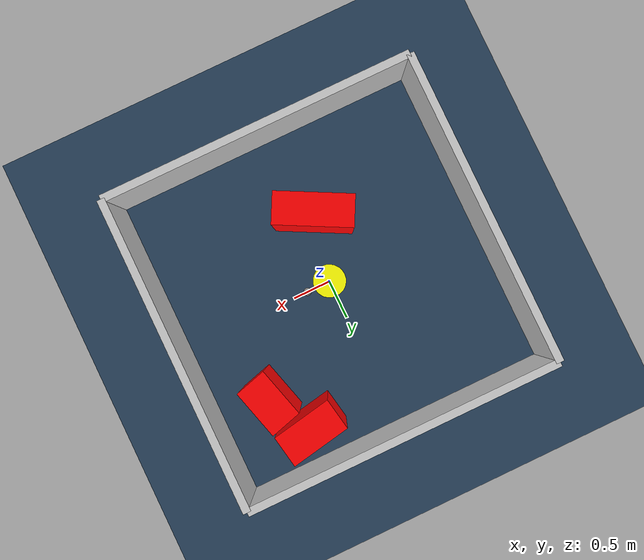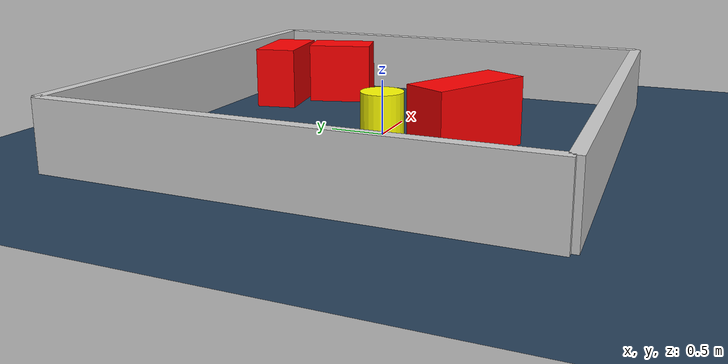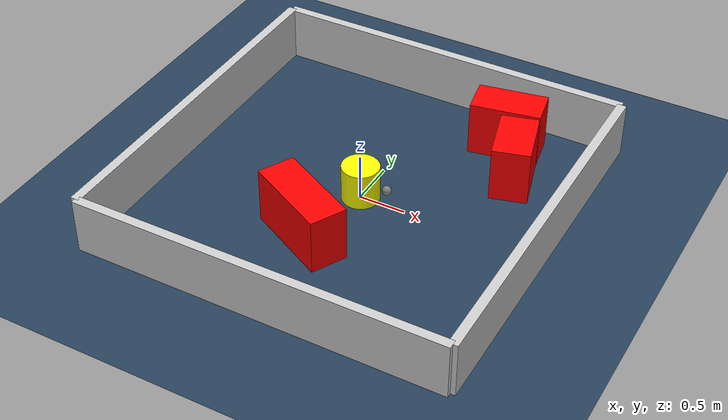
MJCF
<?xml version="1.0" ?>
<mujoco model="generated_environment">
  <option timestep="0.01" integrator="RK4" cone="elliptic"/>
  <default>
    <geom density="1"/>
  </default>
  <asset>
    <texture builtin="gradient" height="3072" rgb1="0.3 0.5 0.7" rgb2="0 0 0" type="skybox" width="512"/>
    <texture builtin="checker" height="300" mark="edge" markrgb="0.8 0.8 0.8" name="groundplane" rgb1="0.2 0.3 0.4" rgb2="0.1 0.2 0.3" type="2d" width="300"/>
    <material name="groundplane" reflectance="0.2" texrepeat="5 5" texture="groundplane" texuniform="true"/>
    <material name="robot" rgba="0.0 1.0 0.0 1"/>
  </asset>
  <worldbody>
    <light dir="0 0 -1" directional="true" pos="0 0 1.5"/>
    <geom condim="4" friction="1.0 0.005 0.001" material="groundplane" name="floor" size="0 0 0.05" type="plane"/>
    <body name="walls">
      <geom name="wall_1" condim="4" pos="-2.0 0.0 0.3" rgba="0.800000011920929 0.800000011920929 0.800000011920929 1.0" size="0.05 2.0 0.3" type="box"/>
      <geom name="wall_2" condim="4" pos="2.0 0.0 0.3" rgba="0.800000011920929 0.800000011920929 0.800000011920929 1.0" size="0.05 2.0 0.3" type="box"/>
      <geom name="wall_3" condim="4" pos="0.0 -2.0 0.3" rgba="0.800000011920929 0.800000011920929 0.800000011920929 1.0" size="2.0 0.05 0.3" type="box"/>
      <geom name="wall_4" condim="4" pos="0.0 2.0 0.3" rgba="0.800000011920929 0.800000011920929 0.800000011920929 1.0" size="2.0 0.05 0.3" type="box"/>
    </body>
    <body name="robot">
      <joint name="joint_x" type="slide" pos="0 0 0" axis="1 0 0"/>
      <joint name="joint_y" type="slide" pos="0 0 0" axis="0 1 0"/>
      <geom name="robot" type="sphere" pos="0.3 0.0 0.2" size="0.05" mass="5." friction="1.0 0.005 0.0001" condim="4" rgba="0.5 0.5 0.5 1.0"/>
      <site name="sensor_ball"/>
    </body>
    <body name="obstacle_movable_1">
      <geom name="obstacle_movable_1" condim="4" pos="0.0 0.0 0.2" euler="0 0 0.0" friction="1.0 0.005 0.001" rgba="1.0 1.0 0.0 1.0" size="0.2 0.2 0.0" type="cylinder" mass="0.1"/>
      <joint type="free"/>
    </body>
    <body name="obstacle_2_static">
      <geom name="obstacle_2_static" condim="4" pos="1.251080862903149 0.9775662971930352 0.3" euler="0 0 285.5813415927198" friction="1.0 0.005 0.001" rgba="1 0 0 1" size="0.3183007431756186 0.2 0.3" type="box"/>
    </body>
    <body name="obstacle_3_static">
      <geom name="obstacle_3_static" condim="4" pos="-0.18690978336224484 -0.8325775803537085 0.3" euler="0 0 332.462386634361" friction="1.0 0.005 0.001" rgba="1 0 0 1" size="0.4865929030976046 0.2 0.3" type="box"/>
    </body>
    <body name="obstacle_4_static">
      <geom name="obstacle_4_static" condim="4" pos="0.947842803790212 1.4959223986760055 0.3" euler="0 0 10.245942171590396" friction="1.0 0.005 0.001" rgba="1 0 0 1" size="0.3739523367271887 0.2 0.3" type="box"/>
    </body>
  </worldbody>
  <actuator>
    <motor name="actuator_x" joint="joint_x" gear="1" ctrlrange="-1 1"/>
    <motor name="actuator_y" joint="joint_y" gear="1" ctrlrange="-1 1"/>
  </actuator>
</mujoco>
